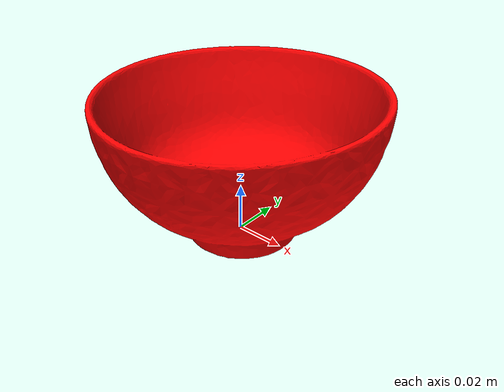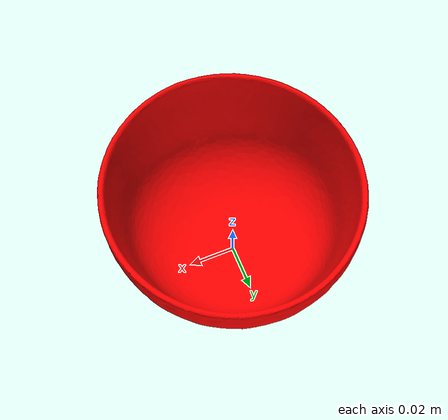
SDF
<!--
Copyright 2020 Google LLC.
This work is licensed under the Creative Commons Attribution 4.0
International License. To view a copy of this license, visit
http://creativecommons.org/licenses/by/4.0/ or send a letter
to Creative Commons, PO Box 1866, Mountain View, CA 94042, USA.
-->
<?xml version="1.0" ?>
<sdf version="1.6">
  <model name="bowl2AV">
    <link name="link_0">
      <visual name="visual">
        <geometry>
          <mesh>
            <uri>model://bowl2AV/meshes/model.obj</uri>
          </mesh>
        </geometry>
        <material>
          <ambient>1 0 0 1</ambient>
          <diffuse>1 0 0 1</diffuse>
          <specular>0.1 0.1 0.1 1</specular>
          <emissive>0 0 0 0</emissive>
        </material>
      </visual>
      <collision name="collision_0">
        <geometry>
          <mesh>
            <uri>model://bowl2AV/meshes/model.obj</uri>
          </mesh>
        </geometry>
        <surface>
          <contact>
            <ode>
              <max_vel>0.1</max_vel>
              <min_depth>0.001</min_depth>
              <soft_erp>0.5</soft_erp>
              <soft_cfm>0.001</soft_cfm>
            </ode>
          </contact>
          <friction>
            <ode>
              <mu>10000.0</mu>
              <mu2>10000.0</mu2>
            </ode>
          </friction>
        </surface>
      </collision>
    </link>
  </model>
</sdf>
